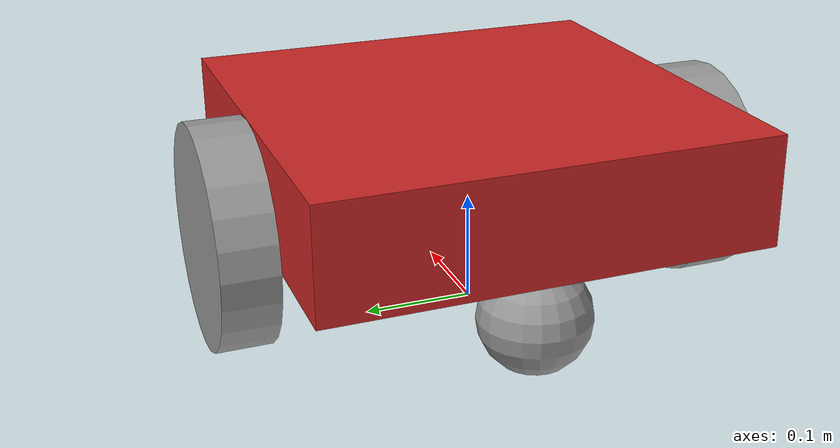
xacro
<?xml version="1.0"?>
<robot xmlns:xacro="http://www.ros.org/wiki/xacro">

    <xacro:property name="length" value="0.4"/>
    <xacro:property name="width" value="0.4"/>
    <xacro:property name="height" value="0.1"/>

    <xacro:property name="mass" value="2.0"/>
    <xacro:property name="wheel_mass" value="0.5"/>

    <xacro:property name="wheel_radius" value="0.1"/>
    <xacro:property name="wheel_width" value="0.05"/>

    <xacro:property name="caster_wheel_radius" value="0.05"/>

    <!-- BASE -->
    <link name="base_link">
        <visual>
            <geometry>
                <box size="${length} ${width} ${height}"/>
            </geometry>
            <origin xyz="0.0 0.0 ${height/2}" rpy="0 0 0"/>
            <material name="red"/>
        </visual>

        <xacro:box_inertia m="${mass}" x="${length}" y="${width}" z="${height}" o_xyz="0 0 ${height/2}" o_rpy="0 0 0"/>

        <collision>
            <geometry>
                <box size="${length} ${width} ${height}"/>
            </geometry>
            <origin xyz="0.0 0.0 ${height/2}" rpy="0 0 0"/>
        </collision>

    </link>
    <!-- LEFT WHEEL -->
    <link name="left_wheel">
        <visual>
            <geometry>
                <cylinder radius="${wheel_radius}" length="${wheel_width}"/>
            </geometry>

            <origin xyz="0 0 0" rpy="${pi/2} 0 0"/>

            <material name="grey"/>
        </visual>

        <xacro:cylinder_inertia m="${wheel_mass}" r="${wheel_radius}" l="${wheel_width}" o_xyz="0 0 0" o_rpy="${pi/2} 0 0"/>

        <collision>
            <geometry>
                <cylinder radius="${wheel_radius}" length="${wheel_width}"/>
            </geometry>
            <origin xyz="0 0 0" rpy="${pi/2} 0 0"/>
        </collision>
    </link>

    <!-- RIGHT WHEEL -->
    <link name="right_wheel">
        <visual>
            <geometry>
                <cylinder radius="${wheel_radius}" length="${wheel_width}"/>
            </geometry>
            <origin xyz="0 0 0" rpy="${pi/2} 0 0"/>

            <material name="grey"/>
        </visual>

        <xacro:cylinder_inertia m="${wheel_mass}" r="${wheel_radius}" l="${wheel_width}" o_xyz="0 0 0" o_rpy="${pi/2} 0 0"/>

        <collision>
            <geometry>
                <cylinder radius="${wheel_radius}" length="${wheel_width}"/>
            </geometry>
            <origin xyz="0 0 0" rpy="${pi/2} 0 0"/>
        </collision>
    </link>

    <!-- FRONT CASTER -->
    <link name="front_caster_link">
        <visual>
            <geometry>
                <sphere radius="${caster_wheel_radius}"/>
            </geometry>
            <material name="grey"/>
        </visual>

        <xacro:sphere_inertia m="0.5" r="${caster_wheel_radius}" o_xyz="0 0 0" o_rpy="0 0 0"/>

        <collision>
            <geometry>
                <sphere radius="${caster_wheel_radius}"/>
            </geometry>
        </collision>
    </link>

    <!-- REAR CASTER -->
    <link name="rear_caster_link">
        <visual>
            <geometry>
                <sphere radius="${caster_wheel_radius}"/>
            </geometry>
            <material name="grey"/>
        </visual>
        <xacro:sphere_inertia m="0.5" r="${caster_wheel_radius}" o_xyz="0 0 0" o_rpy="0 0 0"/>
        <collision>
            <geometry>
                <sphere radius="${caster_wheel_radius}"/>
            </geometry>
        </collision>
    </link>

    <link name="base_footprint"/>

    <!-- BASE -->
    <joint name="base_joint" type="fixed">
        <parent link="base_footprint"/>
        <child link="base_link"/>
        <origin xyz="0 0 ${wheel_radius}" rpy="0 0 0"/>
    </joint>

    <!-- LEFT WHEEL JOINT -->
    <joint name="left_wheel_joint" type="continuous">
        <parent link="base_link"/>
        <child link="left_wheel"/>
        <origin xyz="0 ${(width/2)+(wheel_width/2)} 0" rpy="0 0 0"/>
        <axis xyz="0 1 0"/>
        <dynamics damping="0.1" friction="0.1"/>
    </joint>

    <!-- RIGHT WHEEL JOINT -->
    <joint name="right_wheel_joint" type="continuous">
        <parent link="base_link"/>
        <child link="right_wheel"/>
        <origin xyz="0 ${-((width/2)+(wheel_width/2))} 0" rpy="0 0 0"/>
        <axis xyz="0 1 0"/>
        <dynamics damping="0.1" friction="0.1"/>
    </joint>

    <!-- FRONT CASTER -->
    <joint name="front_caster_joint" type="fixed">
        <parent link="base_link"/>
        <child link="front_caster_link"/>
        <origin xyz="${(length/2)-caster_wheel_radius} 0 -${wheel_radius-caster_wheel_radius}" rpy="0 0 0"/>
    </joint>

    <!-- REAR CASTER -->
    <joint name="rear_caster_joint" type="fixed">
        <parent link="base_link"/>
        <child link="rear_caster_link"/>
        <origin xyz="-${(length/2)-caster_wheel_radius} 0 -${wheel_radius-caster_wheel_radius}" rpy="0 0 0"/>
    </joint>

</robot>
